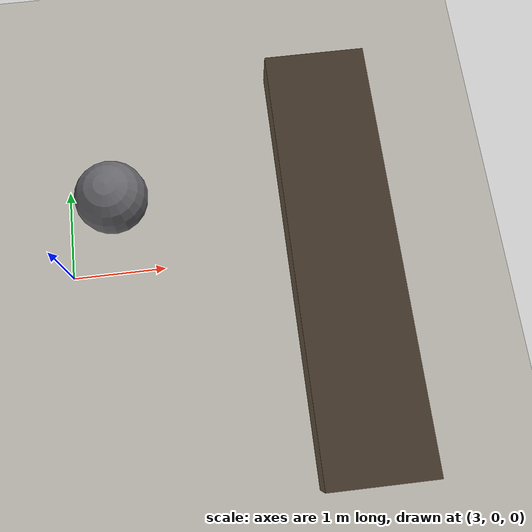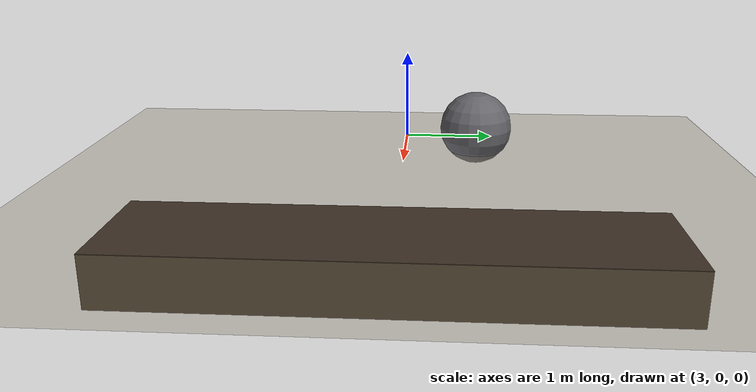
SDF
<?xml version="1.0" ?>
<sdf version="1.9">
  <world name="tactical_obstacle_world">
    <physics name="1ms" type="ignored">
      <max_step_size>0.002</max_step_size>
      <real_time_factor>1.0</real_time_factor>
    </physics>

    <plugin filename="gz-sim-physics-system" name="gz::sim::systems::Physics"/>
    <plugin filename="gz-sim-user-commands-system" name="gz::sim::systems::UserCommands"/>
    <plugin filename="gz-sim-scene-broadcaster-system" name="gz::sim::systems::SceneBroadcaster"/>
    <plugin filename="gz-sim-sensors-system" name="gz::sim::systems::Sensors">
      <render_engine>ogre2</render_engine>
    </plugin>

    <light type="directional" name="sun">
      <cast_shadows>true</cast_shadows>
      <pose>0 0 15 0.523 0.261 0</pose>
      <diffuse>0.9 0.85 0.75 1</diffuse>
      <specular>0.3 0.3 0.3 1</specular>
      <direction>-0.5 0.2 -1.0</direction>
    </light>

    <model name="ground_plane">
      <static>true</static>
      <link name="link">
        <collision name="collision">
          <geometry><plane><normal>0 0 1</normal><size>100 100</size></plane></geometry>
        </collision>
        <visual name="visual">
          <geometry><plane><normal>0 0 1</normal><size>100 100</size></plane></geometry>
          <material>
            <ambient>0.4 0.35 0.25 1</ambient>
            <diffuse>0.5 0.45 0.35 1</diffuse>
          </material>
        </visual>
      </link>
    </model>

    <!-- Negative Obstacle Ditch -->
    <model name="tactical_ditch">
      <static>true</static>
      <pose>6.0 0 -0.25 0 0 0</pose>
      <link name="link">
        <collision name="col"><geometry><box><size>1.2 5.0 0.5</size></box></geometry></collision>
        <visual name="vis">
          <geometry><box><size>1.2 5.0 0.5</size></box></geometry>
          <material><ambient>0.2 0.15 0.1 1</ambient><diffuse>0.25 0.2 0.15 1</diffuse></material>
        </visual>
      </link>
    </model>

    <!-- Boulders -->
    <model name="boulder_1">
      <static>true</static>
      <pose>3.5 0.8 0.25 0 0 0.4</pose>
      <link name="link">
        <collision name="col"><geometry><sphere><radius>0.40</radius></sphere></geometry></collision>
        <visual name="vis">
          <geometry><sphere><radius>0.40</radius></sphere></geometry>
          <material><ambient>0.3 0.3 0.32 1</ambient><diffuse>0.4 0.4 0.42 1</diffuse></material>
        </visual>
      </link>
    </model>
  </world>
</sdf>
